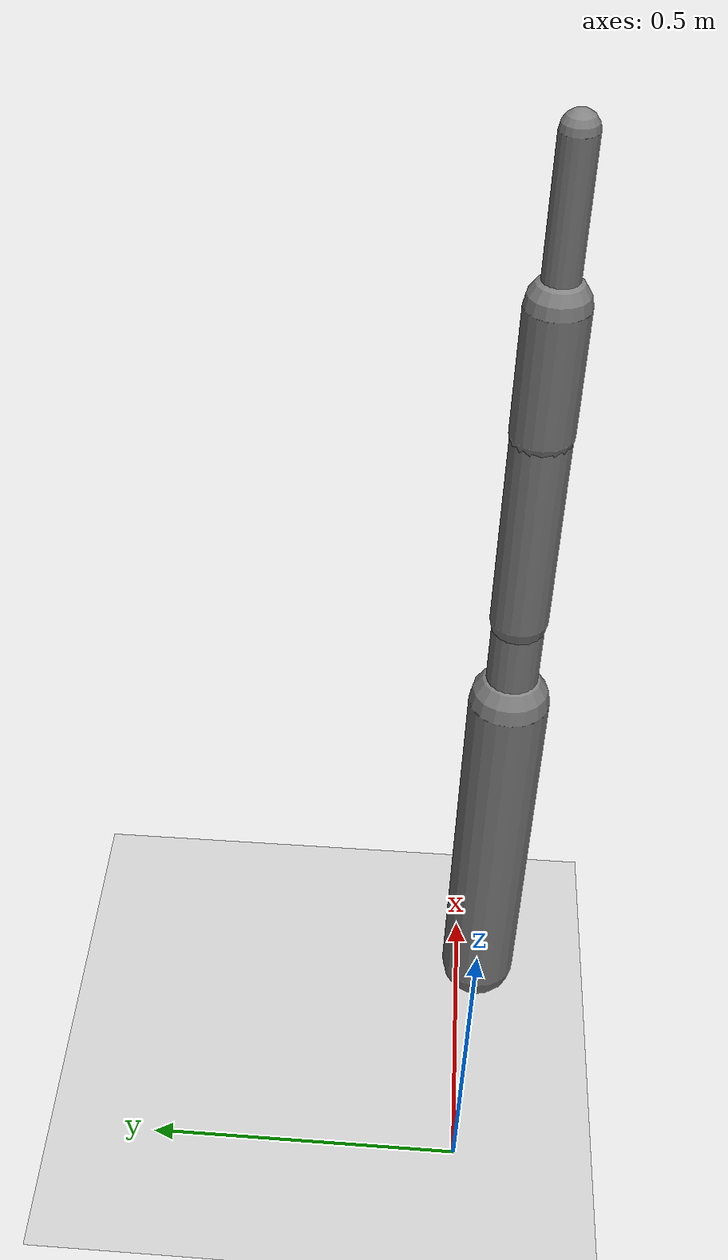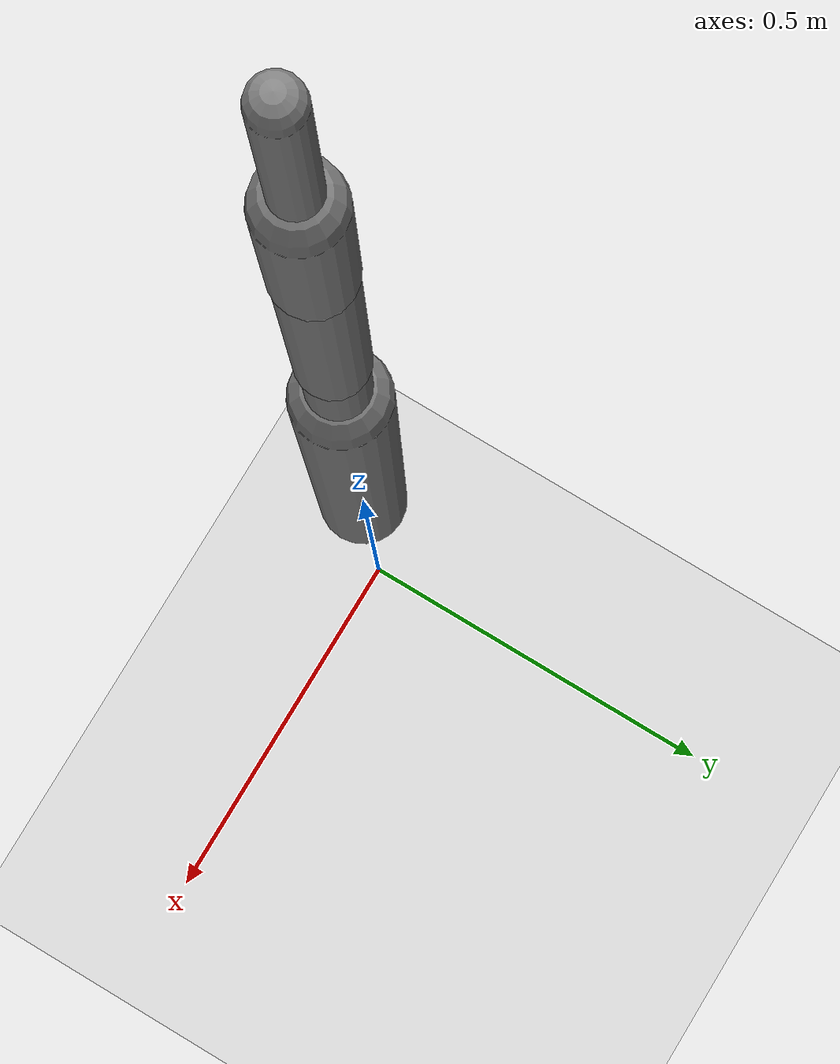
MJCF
<?xml version='1.0' encoding='UTF-8'?>
<mujoco model="RobotModel">
  <option gravity="0 0 -9.81" timestep="0.002" solver="CG" iterations="500" integrator="Euler"/>
  <worldbody>
    <geom name="Floor" type="plane" size="10 10 0.1" pos="0 0 0" rgba="0.8 0.8 0.8 1"/>
    <body name="Limb0" pos="0 0 0.5">
      <geom type="capsule" fromto="0 0 0 0 0 0.5" size="0.05" density="1000" contype="0" conaffinity="0"/>
      <body name="Limb0_7b8cb4c3" pos="0 0 0.5">
        <geom type="capsule" fromto="0 0 0 0 0 0.1283167704690463" size="0.03167911753648747" density="800" contype="0" conaffinity="0"/>
        <body name="Limb1_7b8cb4c3" pos="0 0 0.1283167704690463">
          <geom type="capsule" fromto="0 0 0 0 0 0.253428702223352" size="0.031023404100549642" density="800" contype="0" conaffinity="0"/>
          <body name="Limb2_7b8cb4c3" pos="0 0 0.253428702223352">
            <geom type="capsule" fromto="0 0 0 0 0 0.16968162109415336" size="0.01755838391029386" density="800" contype="0" conaffinity="0"/>
            <joint name="Joint_Limb1_7b8cb4c3_Limb2_7b8cb4c3_0" type="hinge" axis="1 0 0" range="-60 60"/>
          </body>
          <body name="Limb3_7b8cb4c3" pos="0 0 0.253428702223352">
            <geom type="capsule" fromto="0 0 0 0 0 0.14997778101699563" size="0.036247182666638" density="800" contype="0" conaffinity="0"/>
            <joint name="Joint_Limb1_7b8cb4c3_Limb3_7b8cb4c3_0" type="hinge" axis="0 1 0" range="-60 60"/>
          </body>
          <joint name="Joint_Limb0_7b8cb4c3_Limb1_7b8cb4c3_0" type="hinge" axis="0 1 0" range="-60 60"/>
        </body>
        <body name="Limb4_7b8cb4c3" pos="0 0 0.1283167704690463">
          <geom type="capsule" fromto="0 0 0 0 0 0.2678122192869802" size="0.03479746077999156" density="800" contype="0" conaffinity="0"/>
          <body name="Limb5_7b8cb4c3" pos="0 0 0.2678122192869802">
            <geom type="capsule" fromto="0 0 0 0 0 0.13100515861058198" size="0.030716241210501802" density="800" contype="0" conaffinity="0"/>
            <body name="Limb6_7b8cb4c3" pos="0 0 0.13100515861058198">
              <geom type="capsule" fromto="0 0 0 0 0 0.18452259901860507" size="0.020616720932292207" density="800" contype="0" conaffinity="0"/>
              <joint name="Joint_Limb5_7b8cb4c3_Limb6_7b8cb4c3_0" type="hinge" axis="1 0 0" range="-60 60"/>
            </body>
            <joint name="Joint_Limb4_7b8cb4c3_Limb5_7b8cb4c3_0" type="hinge" axis="0 1 0" range="-60 60"/>
          </body>
          <joint name="Joint_Limb0_7b8cb4c3_Limb4_7b8cb4c3_0" type="hinge" axis="0 1 0" range="-60 60"/>
        </body>
        <joint name="Joint_Limb0_Limb0_7b8cb4c3_0" type="hinge" axis="0 1 0" range="-60 60"/>
      </body>
    </body>
  </worldbody>
  <actuator>
    <position name="position_Actuator_Joint_Limb0_Limb0_7b8cb4c3_0" joint="Joint_Limb0_Limb0_7b8cb4c3_0" gear="1.0"/>
    <position name="position_Actuator_Joint_Limb0_7b8cb4c3_Limb1_7b8cb4c3_0" joint="Joint_Limb0_7b8cb4c3_Limb1_7b8cb4c3_0" gear="1.0"/>
    <position name="position_Actuator_Joint_Limb1_7b8cb4c3_Limb2_7b8cb4c3_0" joint="Joint_Limb1_7b8cb4c3_Limb2_7b8cb4c3_0" gear="1.0"/>
    <position name="position_Actuator_Joint_Limb1_7b8cb4c3_Limb3_7b8cb4c3_0" joint="Joint_Limb1_7b8cb4c3_Limb3_7b8cb4c3_0" gear="1.0"/>
    <position name="position_Actuator_Joint_Limb0_7b8cb4c3_Limb4_7b8cb4c3_0" joint="Joint_Limb0_7b8cb4c3_Limb4_7b8cb4c3_0" gear="1.0"/>
    <position name="position_Actuator_Joint_Limb4_7b8cb4c3_Limb5_7b8cb4c3_0" joint="Joint_Limb4_7b8cb4c3_Limb5_7b8cb4c3_0" gear="1.0"/>
    <position name="position_Actuator_Joint_Limb5_7b8cb4c3_Limb6_7b8cb4c3_0" joint="Joint_Limb5_7b8cb4c3_Limb6_7b8cb4c3_0" gear="1.0"/>
  </actuator>
</mujoco>
